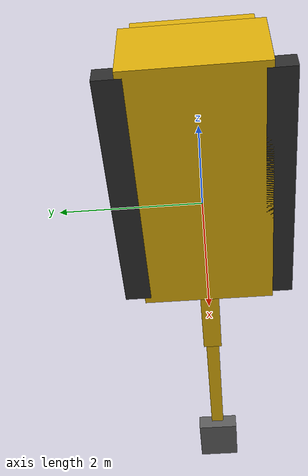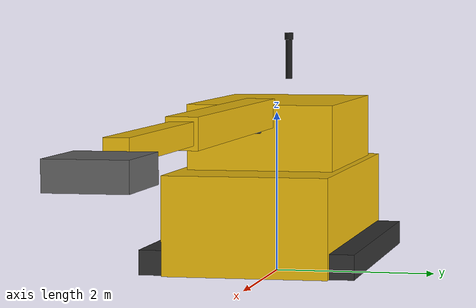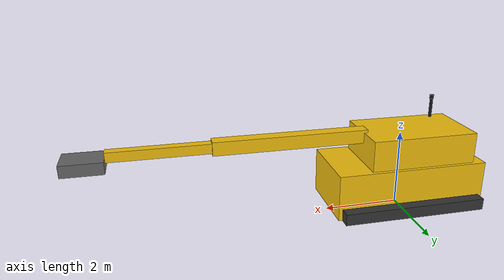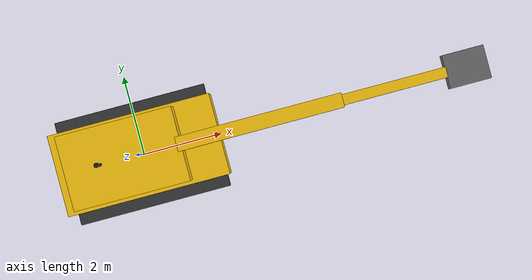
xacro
<?xml version="1.0"?>
<robot name="excavator" xmlns:xacro="http://www.ros.org/wiki/xacro">

  <!-- ===== 全局尺寸参数 ===== -->
  <xacro:property name="PI" value="3.14159265358979"/>

  <!-- 底盘 -->
  <xacro:property name="chassis_mass" value="8000.0"/>
  <xacro:property name="chassis_len"  value="4.0"/>
  <xacro:property name="chassis_wid"  value="2.0"/>
  <xacro:property name="chassis_hgt"  value="1.2"/>

  <!-- 履带 -->
  <xacro:property name="track_mass"      value="500.0"/>
  <xacro:property name="track_len"       value="3.8"/>
  <xacro:property name="track_wid"       value="0.4"/>
  <xacro:property name="track_hgt"       value="0.3"/>
  <xacro:property name="track_offset_y"  value="1.1"/>

  <!-- 动臂 boom -->
  <xacro:property name="boom_mass"    value="800.0"/>
  <xacro:property name="boom_len"     value="4.0"/>
  <xacro:property name="boom_thick"   value="0.35"/>

  <!-- 斗杆 arm -->
  <xacro:property name="arm_mass"     value="400.0"/>
  <xacro:property name="arm_len"      value="2.5"/>
  <xacro:property name="arm_thick"    value="0.25"/>

  <!-- 铲斗 bucket -->
  <xacro:property name="bucket_mass"  value="300.0"/>
  <xacro:property name="bucket_len"   value="1.0"/>
  <xacro:property name="bucket_wid"   value="0.8"/>
  <xacro:property name="bucket_thick" value="0.3"/>

  <!-- ===== 惯量宏 ===== -->
  <xacro:macro name="box_inertia" params="m x y z">
    <inertial>
      <mass value="${m}"/>
      <inertia
        ixx="${m*(y*y+z*z)/12.0}" ixy="0" ixz="0"
        iyy="${m*(x*x+z*z)/12.0}" iyz="0"
        izz="${m*(x*x+y*y)/12.0}"/>
    </inertial>
  </xacro:macro>

  <xacro:macro name="cylinder_inertia" params="m r h">
    <inertial>
      <mass value="${m}"/>
      <inertia
        ixx="${m*(3*r*r+h*h)/12.0}" ixy="0" ixz="0"
        iyy="${m*(3*r*r+h*h)/12.0}" iyz="0"
        izz="${m*r*r/2.0}"/>
    </inertial>
  </xacro:macro>

  <!-- ===== 履带宏（左/右复用） ===== -->
  <xacro:macro name="track_link" params="prefix reflect">
    <link name="${prefix}_track_link">
      <visual>
        <origin xyz="0 0 0" rpy="0 0 0"/>
        <geometry>
          <box size="${track_len} ${track_wid} ${track_hgt}"/>
        </geometry>
        <material name="dark_gray">
          <color rgba="0.2 0.2 0.2 1.0"/>
        </material>
      </visual>
      <collision>
        <origin xyz="0 0 0" rpy="0 0 0"/>
        <geometry>
          <box size="${track_len} ${track_wid} ${track_hgt}"/>
        </geometry>
      </collision>
      <xacro:box_inertia m="${track_mass}" x="${track_len}" y="${track_wid}" z="${track_hgt}"/>
    </link>

    <joint name="${prefix}_track_joint" type="fixed">
      <parent link="base_link"/>
      <child  link="${prefix}_track_link"/>
      <origin xyz="0 ${reflect * track_offset_y} ${-chassis_hgt/2 + track_hgt/2}" rpy="0 0 0"/>
    </joint>

    <gazebo reference="${prefix}_track_link">
      <material>Gazebo/DarkGray</material>
      <mu1>1.5</mu1>
      <mu2>1.5</mu2>
    </gazebo>
  </xacro:macro>

  <!-- ===== 世界坐标基准 ===== -->
  <link name="base_footprint"/>

  <joint name="base_footprint_joint" type="fixed">
    <parent link="base_footprint"/>
    <child  link="base_link"/>
    <origin xyz="0 0 0.75" rpy="0 0 0"/>
  </joint>

  <!-- ===== 底盘 ===== -->
  <link name="base_link">
    <visual>
      <origin xyz="0 0 0" rpy="0 0 0"/>
      <geometry>
        <box size="${chassis_len} ${chassis_wid} ${chassis_hgt}"/>
      </geometry>
      <material name="excavator_yellow">
        <color rgba="0.95 0.75 0.05 1.0"/>
      </material>
    </visual>
    <collision>
      <origin xyz="0 0 0" rpy="0 0 0"/>
      <geometry>
        <box size="${chassis_len} ${chassis_wid} ${chassis_hgt}"/>
      </geometry>
    </collision>
    <xacro:box_inertia m="${chassis_mass}" x="${chassis_len}" y="${chassis_wid}" z="${chassis_hgt}"/>
  </link>

  <gazebo reference="base_link">
    <material>Gazebo/Yellow</material>
  </gazebo>

  <!-- ===== 左右履带 ===== -->
  <xacro:track_link prefix="left"  reflect="1"/>
  <xacro:track_link prefix="right" reflect="-1"/>

  <!-- ===== 上部回转体 ===== -->
  <link name="turret_link">
    <visual>
      <origin xyz="-0.3 0 0" rpy="0 0 0"/>
      <geometry>
        <box size="2.8 1.8 0.8"/>
      </geometry>
      <material name="excavator_yellow">
        <color rgba="0.95 0.75 0.05 1.0"/>
      </material>
    </visual>
    <collision>
      <origin xyz="-0.3 0 0" rpy="0 0 0"/>
      <geometry>
        <box size="2.8 1.8 0.8"/>
      </geometry>
    </collision>
    <inertial>
      <mass value="2000.0"/>
      <inertia ixx="600" ixy="0" ixz="0" iyy="1200" iyz="0" izz="1400"/>
    </inertial>
  </link>

  <joint name="turret_joint" type="revolute">
    <parent link="base_link"/>
    <child  link="turret_link"/>
    <origin xyz="0 0 ${chassis_hgt/2 + 0.4}" rpy="0 0 0"/>
    <axis xyz="0 0 1"/>
    <limit lower="-3.14159" upper="3.14159" effort="50000" velocity="0.5"/>
    <dynamics damping="100.0" friction="50.0"/>
  </joint>

  <gazebo reference="turret_link">
    <material>Gazebo/Yellow</material>
  </gazebo>

  <!-- ===== 动臂 boom ===== -->
  <link name="boom_link">
    <visual>
      <origin xyz="${boom_len/2} 0 0" rpy="0 0 0"/>
      <geometry>
        <box size="${boom_len} ${boom_thick} ${boom_thick}"/>
      </geometry>
      <material name="excavator_yellow">
        <color rgba="0.95 0.75 0.05 1.0"/>
      </material>
    </visual>
    <collision>
      <origin xyz="${boom_len/2} 0 0" rpy="0 0 0"/>
      <geometry>
        <box size="${boom_len} ${boom_thick} ${boom_thick}"/>
      </geometry>
    </collision>
    <xacro:box_inertia m="${boom_mass}" x="${boom_len}" y="${boom_thick}" z="${boom_thick}"/>
  </link>

  <joint name="boom_joint" type="revolute">
    <parent link="turret_link"/>
    <child  link="boom_link"/>
    <origin xyz="1.0 0 0.3" rpy="0 0 0"/>
    <axis xyz="0 1 0"/>
    <limit lower="-0.35" upper="1.22" effort="80000" velocity="0.3"/>
    <dynamics damping="200.0" friction="100.0"/>
  </joint>

  <gazebo reference="boom_link">
    <material>Gazebo/Yellow</material>
  </gazebo>

  <!-- ===== 斗杆 arm ===== -->
  <link name="arm_link">
    <visual>
      <origin xyz="${arm_len/2} 0 0" rpy="0 0 0"/>
      <geometry>
        <box size="${arm_len} ${arm_thick} ${arm_thick}"/>
      </geometry>
      <material name="excavator_yellow">
        <color rgba="0.95 0.75 0.05 1.0"/>
      </material>
    </visual>
    <collision>
      <origin xyz="${arm_len/2} 0 0" rpy="0 0 0"/>
      <geometry>
        <box size="${arm_len} ${arm_thick} ${arm_thick}"/>
      </geometry>
    </collision>
    <xacro:box_inertia m="${arm_mass}" x="${arm_len}" y="${arm_thick}" z="${arm_thick}"/>
  </link>

  <joint name="arm_joint" type="revolute">
    <parent link="boom_link"/>
    <child  link="arm_link"/>
    <origin xyz="${boom_len} 0 0" rpy="0 0 0"/>
    <axis xyz="0 1 0"/>
    <limit lower="-2.09" upper="0.35" effort="60000" velocity="0.4"/>
    <dynamics damping="150.0" friction="80.0"/>
  </joint>

  <gazebo reference="arm_link">
    <material>Gazebo/Yellow</material>
  </gazebo>

  <!-- ===== 铲斗 bucket ===== -->
  <link name="bucket_link">
    <visual>
      <origin xyz="${bucket_len/2} 0 ${-bucket_thick/2}" rpy="0 0 0"/>
      <geometry>
        <box size="${bucket_len} ${bucket_wid} ${bucket_thick}"/>
      </geometry>
      <material name="steel_gray">
        <color rgba="0.4 0.4 0.4 1.0"/>
      </material>
    </visual>
    <collision>
      <origin xyz="${bucket_len/2} 0 ${-bucket_thick/2}" rpy="0 0 0"/>
      <geometry>
        <box size="${bucket_len} ${bucket_wid} ${bucket_thick}"/>
      </geometry>
    </collision>
    <xacro:box_inertia m="${bucket_mass}" x="${bucket_len}" y="${bucket_wid}" z="${bucket_thick}"/>
  </link>

  <joint name="bucket_joint" type="revolute">
    <parent link="arm_link"/>
    <child  link="bucket_link"/>
    <origin xyz="${arm_len} 0 0" rpy="0 0 0"/>
    <axis xyz="0 1 0"/>
    <limit lower="-2.44" upper="0.70" effort="40000" velocity="0.5"/>
    <dynamics damping="80.0" friction="40.0"/>
  </joint>

  <gazebo reference="bucket_link">
    <material>Gazebo/Grey</material>
  </gazebo>

  <!-- ===== 传感器支架 ===== -->
  <link name="sensor_mast_link">
    <visual>
      <geometry><cylinder radius="0.04" length="0.5"/></geometry>
      <material name="black"><color rgba="0.1 0.1 0.1 1"/></material>
    </visual>
    <collision>
      <geometry><cylinder radius="0.04" length="0.5"/></geometry>
    </collision>
    <xacro:cylinder_inertia m="2.0" r="0.04" h="0.5"/>
  </link>

  <joint name="sensor_mast_joint" type="fixed">
    <parent link="turret_link"/>
    <child  link="sensor_mast_link"/>
    <origin xyz="-0.8 0 0.9" rpy="0 0 0"/>
  </joint>

  <!-- ===== 传感器（摄像头 + 激光雷达）===== -->
  <!-- 传感器连杆、关节和 Gazebo 插件定义在 sensors.xacro 中 -->
  <xacro:include filename="$(find excavator_description)/urdf/sensors.xacro"/>

  <!-- ===== Gazebo 插件：平面移动（planar_move） ===== -->
  <!-- 方案B：替换 diff_drive，彻底绕开履带滚动物理问题（ADR-013） -->
  <gazebo>
    <plugin name="planar_move_controller" filename="libgazebo_ros_planar_move.so">
      <commandTopic>cmd_vel</commandTopic>
      <odometryTopic>odom</odometryTopic>
      <odometryFrame>odom</odometryFrame>
      <odometryRate>20.0</odometryRate>
      <robotBaseFrame>base_footprint</robotBaseFrame>
    </plugin>
  </gazebo>

</robot>

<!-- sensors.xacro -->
<robot xmlns:xacro="http://www.ros.org/wiki/xacro">

  <!--
    sensors.xacro
    传感器模块：摄像头 + 激光雷达
    父连杆：turret_link（摄像头）、sensor_mast_link（激光雷达）
    frame_id 必须与 TF 树一致：camera_optical_link / lidar_link
  -->

  <xacro:property name="PI" value="3.14159265358979"/>

  <!-- ===== 摄像头连杆 ===== -->
  <link name="camera_link">
    <visual>
      <geometry>
        <box size="0.06 0.12 0.06"/>
      </geometry>
      <material name="sensor_black">
        <color rgba="0.1 0.1 0.1 1.0"/>
      </material>
    </visual>
    <collision>
      <geometry>
        <box size="0.06 0.12 0.06"/>
      </geometry>
    </collision>
    <inertial>
      <mass value="0.15"/>
      <inertia ixx="0.001" ixy="0" ixz="0"
               iyy="0.001" iyz="0"
               izz="0.001"/>
    </inertial>
  </link>

  <!-- 摄像头挂载到回转体前端，高于中心 0.1m，距轴线 1.3m -->
  <joint name="camera_joint" type="fixed">
    <parent link="turret_link"/>
    <child  link="camera_link"/>
    <origin xyz="1.3 0 0.1" rpy="0 0 0"/>
  </joint>

  <!-- 摄像头光学坐标系：ROS 惯例 Z 轴朝前，X 朝右 -->
  <link name="camera_optical_link"/>
  <joint name="camera_optical_joint" type="fixed">
    <parent link="camera_link"/>
    <child  link="camera_optical_link"/>
    <origin xyz="0 0 0" rpy="${-PI/2} 0 ${-PI/2}"/>
  </joint>

  <!-- ===== 激光雷达连杆 ===== -->
  <link name="lidar_link">
    <visual>
      <geometry>
        <cylinder radius="0.055" length="0.09"/>
      </geometry>
      <material name="sensor_black">
        <color rgba="0.1 0.1 0.1 1.0"/>
      </material>
    </visual>
    <collision>
      <geometry>
        <cylinder radius="0.055" length="0.09"/>
      </geometry>
    </collision>
    <inertial>
      <mass value="0.25"/>
      <!-- cylinder: Ixx=Iyy=m(3r²+h²)/12, Izz=mr²/2 -->
      <inertia ixx="0.000367" ixy="0" ixz="0"
               iyy="0.000367" iyz="0"
               izz="0.000379"/>
    </inertial>
  </link>

  <!-- 激光雷达挂载到传感器支架顶端 0.3m -->
  <joint name="lidar_joint" type="fixed">
    <parent link="sensor_mast_link"/>
    <child  link="lidar_link"/>
    <origin xyz="0 0 0.3" rpy="0 0 0"/>
  </joint>

  <!-- ===== Gazebo 插件：摄像头 ===== -->
  <gazebo reference="camera_link">
    <sensor type="camera" name="front_camera">
      <update_rate>30.0</update_rate>
      <camera name="head">
        <!-- 水平视角 90° -->
        <horizontal_fov>1.5708</horizontal_fov>
        <image>
          <width>640</width>
          <height>480</height>
          <format>R8G8B8</format>
        </image>
        <clip>
          <near>0.02</near>
          <far>300</far>
        </clip>
        <noise>
          <type>gaussian</type>
          <mean>0.0</mean>
          <stddev>0.007</stddev>
        </noise>
      </camera>
      <plugin name="camera_controller" filename="libgazebo_ros_camera.so">
        <alwaysOn>true</alwaysOn>
        <updateRate>30.0</updateRate>
        <cameraName>camera</cameraName>
        <imageTopicName>image_raw</imageTopicName>
        <cameraInfoTopicName>camera_info</cameraInfoTopicName>
        <!-- frameName 必须与 TF 中 camera_optical_link 一致 -->
        <frameName>camera_optical_link</frameName>
        <hackBaseline>0.0</hackBaseline>
      </plugin>
    </sensor>
  </gazebo>

  <!-- ===== Gazebo 插件：激光雷达 ===== -->
  <gazebo reference="lidar_link">
    <sensor type="ray" name="lidar_sensor">
      <pose>0 0 0 0 0 0</pose>
      <!-- 仿真中不显示射线（正式测试），调试时改为 true -->
      <visualize>false</visualize>
      <update_rate>10.0</update_rate>
      <ray>
        <scan>
          <horizontal>
            <!-- 360°，1° 分辨率 = 360 采样 -->
            <samples>360</samples>
            <resolution>1</resolution>
            <min_angle>-3.14159265</min_angle>
            <max_angle>3.14159265</max_angle>
          </horizontal>
        </scan>
        <range>
          <min>0.10</min>
          <max>15.0</max>
          <resolution>0.01</resolution>
        </range>
        <noise>
          <type>gaussian</type>
          <mean>0.0</mean>
          <stddev>0.01</stddev>
        </noise>
      </ray>
      <plugin name="gazebo_ros_lidar" filename="libgazebo_ros_laser.so">
        <topicName>/lidar/scan</topicName>
        <!-- frameName 与 TF lidar_link 一致 -->
        <frameName>lidar_link</frameName>
      </plugin>
    </sensor>
  </gazebo>

</robot>
